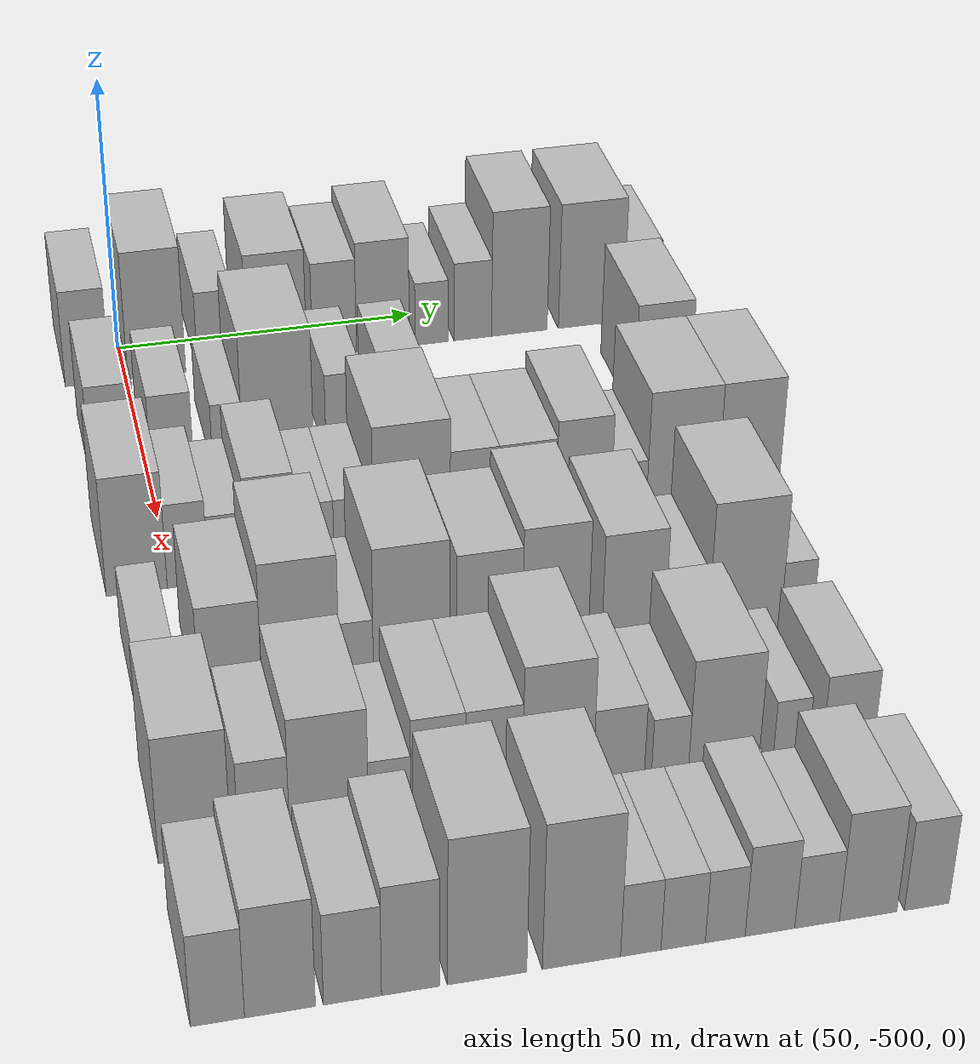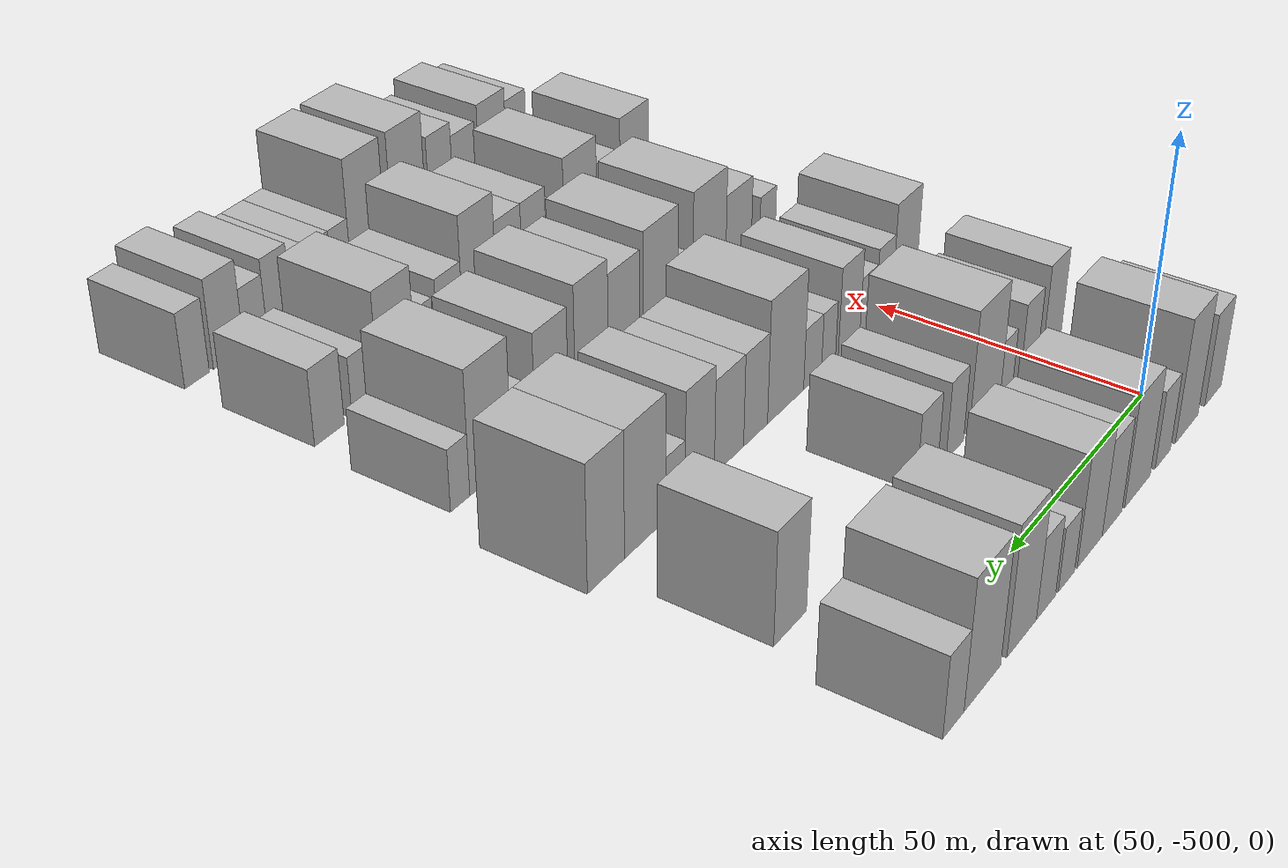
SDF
<sdf version="1.6">
 <world name="default">
  <model name="building_1">
   <static>1</static>
   <pose>50.0000 -506.3268 0 0.000000 0.000000 0.000000</pose>
   <link name="link">
    <pose>0 0 9.00 0 0 0</pose>
    <collision name="collision"><geometry><box><size>20.0000 7.3464 18.0000</size></box></geometry></collision>
    <visual name="visual">
     <cast_shadows>0</cast_shadows>
     <geometry><box><size>20.0000 7.3464 18.0000</size></box></geometry>
     <material>
      <script>
       <uri>model://HANNAS_wall/materials/scripts</uri>
       <uri>model://HANNAS_wall/materials/textures</uri>
       <name>vrc/HANNAS_wall</name>
      </script>
     </material>
    </visual>
   </link>
  </model>
  <model name="building_2">
   <static>1</static>
   <pose>50.0000 -494.8305 0 0.000000 0.000000 0.000000</pose>
   <link name="link">
    <pose>0 0 12.00 0 0 0</pose>
    <collision name="collision"><geometry><box><size>20.0000 9.6461 24.0000</size></box></geometry></collision>
    <visual name="visual">
     <cast_shadows>0</cast_shadows>
     <geometry><box><size>20.0000 9.6461 24.0000</size></box></geometry>
     <material>
      <script>
       <uri>model://HANNAS_wall/materials/scripts</uri>
       <uri>model://HANNAS_wall/materials/textures</uri>
       <name>vrc/HANNAS_wall</name>
      </script>
     </material>
    </visual>
   </link>
  </model>
  <model name="building_3">
   <static>1</static>
   <pose>50.0000 -484.8706 0 0.000000 0.000000 0.000000</pose>
   <link name="link">
    <pose>0 0 7.50 0 0 0</pose>
    <collision name="collision"><geometry><box><size>20.0000 6.2738 15.0000</size></box></geometry></collision>
    <visual name="visual">
     <cast_shadows>0</cast_shadows>
     <geometry><box><size>20.0000 6.2738 15.0000</size></box></geometry>
     <material>
      <script>
       <uri>model://HANNAS_wall/materials/scripts</uri>
       <uri>model://HANNAS_wall/materials/textures</uri>
       <name>vrc/HANNAS_wall</name>
      </script>
     </material>
    </visual>
   </link>
  </model>
  <model name="building_4">
   <static>1</static>
   <pose>50.0000 -474.6701 0 0.000000 0.000000 0.000000</pose>
   <link name="link">
    <pose>0 0 10.50 0 0 0</pose>
    <collision name="collision"><geometry><box><size>20.0000 10.1271 21.0000</size></box></geometry></collision>
    <visual name="visual">
     <cast_shadows>0</cast_shadows>
     <geometry><box><size>20.0000 10.1271 21.0000</size></box></geometry>
     <material>
      <script>
       <uri>model://HANNAS_wall/materials/scripts</uri>
       <uri>model://HANNAS_wall/materials/textures</uri>
       <name>vrc/HANNAS_wall</name>
      </script>
     </material>
    </visual>
   </link>
  </model>
  <model name="building_5">
   <static>1</static>
   <pose>50.0000 -464.8590 0 0.000000 0.000000 0.000000</pose>
   <link name="link">
    <pose>0 0 9.00 0 0 0</pose>
    <collision name="collision"><geometry><box><size>20.0000 7.4952 18.0000</size></box></geometry></collision>
    <visual name="visual">
     <cast_shadows>0</cast_shadows>
     <geometry><box><size>20.0000 7.4952 18.0000</size></box></geometry>
     <material>
      <script>
       <uri>model://HANNAS_wall/materials/scripts</uri>
       <uri>model://HANNAS_wall/materials/textures</uri>
       <name>vrc/HANNAS_wall</name>
      </script>
     </material>
    </visual>
   </link>
  </model>
  <model name="building_6">
   <static>1</static>
   <pose>50.0000 -456.5824 0 0.000000 0.000000 0.000000</pose>
   <link name="link">
    <pose>0 0 10.50 0 0 0</pose>
    <collision name="collision"><geometry><box><size>20.0000 9.0579 21.0000</size></box></geometry></collision>
    <visual name="visual">
     <cast_shadows>0</cast_shadows>
     <geometry><box><size>20.0000 9.0579 21.0000</size></box></geometry>
     <material>
      <script>
       <uri>model://HANNAS_wall/materials/scripts</uri>
       <uri>model://HANNAS_wall/materials/textures</uri>
       <name>vrc/HANNAS_wall</name>
      </script>
     </material>
    </visual>
   </link>
  </model>
  <model name="building_7">
   <static>1</static>
   <pose>50.0000 -448.1775 0 0.000000 0.000000 0.000000</pose>
   <link name="link">
    <pose>0 0 6.00 0 0 0</pose>
    <collision name="collision"><geometry><box><size>20.0000 5.7519 12.0000</size></box></geometry></collision>
    <visual name="visual">
     <cast_shadows>0</cast_shadows>
     <geometry><box><size>20.0000 5.7519 12.0000</size></box></geometry>
     <material>
      <script>
       <uri>model://HANNAS_wall/materials/scripts</uri>
       <uri>model://HANNAS_wall/materials/textures</uri>
       <name>vrc/HANNAS_wall</name>
      </script>
     </material>
    </visual>
   </link>
  </model>
  <model name="building_8">
   <static>1</static>
   <pose>50.0000 -441.0322 0 0.000000 0.000000 0.000000</pose>
   <link name="link">
    <pose>0 0 7.50 0 0 0</pose>
    <collision name="collision"><geometry><box><size>20.0000 6.5389 15.0000</size></box></geometry></collision>
    <visual name="visual">
     <cast_shadows>0</cast_shadows>
     <geometry><box><size>20.0000 6.5389 15.0000</size></box></geometry>
     <material>
      <script>
       <uri>model://HANNAS_wall/materials/scripts</uri>
       <uri>model://HANNAS_wall/materials/textures</uri>
       <name>vrc/HANNAS_wall</name>
      </script>
     </material>
    </visual>
   </link>
  </model>
  <model name="building_9">
   <static>1</static>
   <pose>50.0000 -432.8886 0 0.000000 0.000000 0.000000</pose>
   <link name="link">
    <pose>0 0 12.00 0 0 0</pose>
    <collision name="collision"><geometry><box><size>20.0000 9.7483 24.0000</size></box></geometry></collision>
    <visual name="visual">
     <cast_shadows>0</cast_shadows>
     <geometry><box><size>20.0000 9.7483 24.0000</size></box></geometry>
     <material>
      <script>
       <uri>model://HANNAS_wall/materials/scripts</uri>
       <uri>model://HANNAS_wall/materials/textures</uri>
       <name>vrc/HANNAS_wall</name>
      </script>
     </material>
    </visual>
   </link>
  </model>
  <model name="building_10">
   <static>1</static>
   <pose>50.0000 -420.2795 0 0.000000 0.000000 0.000000</pose>
   <link name="link">
    <pose>0 0 12.00 0 0 0</pose>
    <collision name="collision"><geometry><box><size>20.0000 11.4699 24.0000</size></box></geometry></collision>
    <visual name="visual">
     <cast_shadows>0</cast_shadows>
     <geometry><box><size>20.0000 11.4699 24.0000</size></box></geometry>
     <material>
      <script>
       <uri>model://HANNAS_wall/materials/scripts</uri>
       <uri>model://HANNAS_wall/materials/textures</uri>
       <name>vrc/HANNAS_wall</name>
      </script>
     </material>
    </visual>
   </link>
  </model>
  <model name="building_11">
   <static>1</static>
   <pose>50.0000 -411.3486 0 0.000000 0.000000 0.000000</pose>
   <link name="link">
    <pose>0 0 7.50 0 0 0</pose>
    <collision name="collision"><geometry><box><size>20.0000 6.3918 15.0000</size></box></geometry></collision>
    <visual name="visual">
     <cast_shadows>0</cast_shadows>
     <geometry><box><size>20.0000 6.3918 15.0000</size></box></geometry>
     <material>
      <script>
       <uri>model://HANNAS_wall/materials/scripts</uri>
       <uri>model://HANNAS_wall/materials/textures</uri>
       <name>vrc/HANNAS_wall</name>
      </script>
     </material>
    </visual>
   </link>
  </model>
  <model name="building_111">
   <static>1</static>
   <pose>79.0000 -505.2695 0 0.000000 0.000000 0.000000</pose>
   <link name="link">
    <pose>0 0 9.00 0 0 0</pose>
    <collision name="collision"><geometry><box><size>20.0000 7.4611 18.0000</size></box></geometry></collision>
    <visual name="visual">
     <cast_shadows>0</cast_shadows>
     <geometry><box><size>20.0000 7.4611 18.0000</size></box></geometry>
     <material>
      <script>
       <uri>model://HANNAS_wall/materials/scripts</uri>
       <uri>model://HANNAS_wall/materials/textures</uri>
       <name>vrc/HANNAS_wall</name>
      </script>
     </material>
    </visual>
   </link>
  </model>
  <model name="building_112">
   <static>1</static>
   <pose>79.0000 -496.1673 0 0.000000 0.000000 0.000000</pose>
   <link name="link">
    <pose>0 0 7.50 0 0 0</pose>
    <collision name="collision"><geometry><box><size>20.0000 6.7433 15.0000</size></box></geometry></collision>
    <visual name="visual">
     <cast_shadows>0</cast_shadows>
     <geometry><box><size>20.0000 6.7433 15.0000</size></box></geometry>
     <material>
      <script>
       <uri>model://HANNAS_wall/materials/scripts</uri>
       <uri>model://HANNAS_wall/materials/textures</uri>
       <name>vrc/HANNAS_wall</name>
      </script>
     </material>
    </visual>
   </link>
  </model>
  <model name="building_113">
   <static>1</static>
   <pose>79.0000 -487.3904 0 0.000000 0.000000 0.000000</pose>
   <link name="link">
    <pose>0 0 6.00 0 0 0</pose>
    <collision name="collision"><geometry><box><size>20.0000 4.8106 12.0000</size></box></geometry></collision>
    <visual name="visual">
     <cast_shadows>0</cast_shadows>
     <geometry><box><size>20.0000 4.8106 12.0000</size></box></geometry>
     <material>
      <script>
       <uri>model://HANNAS_wall/materials/scripts</uri>
       <uri>model://HANNAS_wall/materials/textures</uri>
       <name>vrc/HANNAS_wall</name>
      </script>
     </material>
    </visual>
   </link>
  </model>
  <model name="building_114">
   <static>1</static>
   <pose>79.0000 -479.3361 0 0.000000 0.000000 0.000000</pose>
   <link name="link">
    <pose>0 0 12.00 0 0 0</pose>
    <collision name="collision"><geometry><box><size>20.0000 11.2979 24.0000</size></box></geometry></collision>
    <visual name="visual">
     <cast_shadows>0</cast_shadows>
     <geometry><box><size>20.0000 11.2979 24.0000</size></box></geometry>
     <material>
      <script>
       <uri>model://HANNAS_wall/materials/scripts</uri>
       <uri>model://HANNAS_wall/materials/textures</uri>
       <name>vrc/HANNAS_wall</name>
      </script>
     </material>
    </visual>
   </link>
  </model>
  <model name="building_115">
   <static>1</static>
   <pose>79.0000 -468.6119 0 0.000000 0.000000 0.000000</pose>
   <link name="link">
    <pose>0 0 7.50 0 0 0</pose>
    <collision name="collision"><geometry><box><size>20.0000 6.1506 15.0000</size></box></geometry></collision>
    <visual name="visual">
     <cast_shadows>0</cast_shadows>
     <geometry><box><size>20.0000 6.1506 15.0000</size></box></geometry>
     <material>
      <script>
       <uri>model://HANNAS_wall/materials/scripts</uri>
       <uri>model://HANNAS_wall/materials/textures</uri>
       <name>vrc/HANNAS_wall</name>
      </script>
     </material>
    </visual>
   </link>
  </model>
  <model name="building_116">
   <static>1</static>
   <pose>79.0000 -458.9659 0 0.000000 0.000000 0.000000</pose>
   <link name="link">
    <pose>0 0 7.50 0 0 0</pose>
    <collision name="collision"><geometry><box><size>20.0000 7.1414 15.0000</size></box></geometry></collision>
    <visual name="visual">
     <cast_shadows>0</cast_shadows>
     <geometry><box><size>20.0000 7.1414 15.0000</size></box></geometry>
     <material>
      <script>
       <uri>model://HANNAS_wall/materials/scripts</uri>
       <uri>model://HANNAS_wall/materials/textures</uri>
       <name>vrc/HANNAS_wall</name>
      </script>
     </material>
    </visual>
   </link>
  </model>
  <model name="building_117">
   <static>1</static>
   <pose>79.0000 -416.3410 0 0.000000 0.000000 0.000000</pose>
   <link name="link">
    <pose>0 0 10.50 0 0 0</pose>
    <collision name="collision"><geometry><box><size>20.0000 9.3695 21.0000</size></box></geometry></collision>
    <visual name="visual">
     <cast_shadows>0</cast_shadows>
     <geometry><box><size>20.0000 9.3695 21.0000</size></box></geometry>
     <material>
      <script>
       <uri>model://HANNAS_wall/materials/scripts</uri>
       <uri>model://HANNAS_wall/materials/textures</uri>
       <name>vrc/HANNAS_wall</name>
      </script>
     </material>
    </visual>
   </link>
  </model>
  <model name="building_222">
   <static>1</static>
   <pose>108.0000 -505.4790 0 0.000000 0.000000 0.000000</pose>
   <link name="link">
    <pose>0 0 10.50 0 0 0</pose>
    <collision name="collision"><geometry><box><size>20.0000 9.0421 21.0000</size></box></geometry></collision>
    <visual name="visual">
     <cast_shadows>0</cast_shadows>
     <geometry><box><size>20.0000 9.0421 21.0000</size></box></geometry>
     <material>
      <script>
       <uri>model://HANNAS_wall/materials/scripts</uri>
       <uri>model://HANNAS_wall/materials/textures</uri>
       <name>vrc/HANNAS_wall</name>
      </script>
     </material>
    </visual>
   </link>
  </model>
  <model name="building_223">
   <static>1</static>
   <pose>108.0000 -497.9045 0 0.000000 0.000000 0.000000</pose>
   <link name="link">
    <pose>0 0 7.50 0 0 0</pose>
    <collision name="collision"><geometry><box><size>20.0000 6.1069 15.0000</size></box></geometry></collision>
    <visual name="visual">
     <cast_shadows>0</cast_shadows>
     <geometry><box><size>20.0000 6.1069 15.0000</size></box></geometry>
     <material>
      <script>
       <uri>model://HANNAS_wall/materials/scripts</uri>
       <uri>model://HANNAS_wall/materials/textures</uri>
       <name>vrc/HANNAS_wall</name>
      </script>
     </material>
    </visual>
   </link>
  </model>
  <model name="building_224">
   <static>1</static>
   <pose>108.0000 -492.0400 0 0.000000 0.000000 0.000000</pose>
   <link name="link">
    <pose>0 0 6.00 0 0 0</pose>
    <collision name="collision"><geometry><box><size>20.0000 5.6221 12.0000</size></box></geometry></collision>
    <visual name="visual">
     <cast_shadows>0</cast_shadows>
     <geometry><box><size>20.0000 5.6221 12.0000</size></box></geometry>
     <material>
      <script>
       <uri>model://HANNAS_wall/materials/scripts</uri>
       <uri>model://HANNAS_wall/materials/textures</uri>
       <name>vrc/HANNAS_wall</name>
      </script>
     </material>
    </visual>
   </link>
  </model>
  <model name="building_225">
   <static>1</static>
   <pose>108.0000 -485.4439 0 0.000000 0.000000 0.000000</pose>
   <link name="link">
    <pose>0 0 9.00 0 0 0</pose>
    <collision name="collision"><geometry><box><size>20.0000 7.5700 18.0000</size></box></geometry></collision>
    <visual name="visual">
     <cast_shadows>0</cast_shadows>
     <geometry><box><size>20.0000 7.5700 18.0000</size></box></geometry>
     <material>
      <script>
       <uri>model://HANNAS_wall/materials/scripts</uri>
       <uri>model://HANNAS_wall/materials/textures</uri>
       <name>vrc/HANNAS_wall</name>
      </script>
     </material>
    </visual>
   </link>
  </model>
  <model name="building_226">
   <static>1</static>
   <pose>108.0000 -478.2546 0 0.000000 0.000000 0.000000</pose>
   <link name="link">
    <pose>0 0 6.00 0 0 0</pose>
    <collision name="collision"><geometry><box><size>20.0000 4.8088 12.0000</size></box></geometry></collision>
    <visual name="visual">
     <cast_shadows>0</cast_shadows>
     <geometry><box><size>20.0000 4.8088 12.0000</size></box></geometry>
     <material>
      <script>
       <uri>model://HANNAS_wall/materials/scripts</uri>
       <uri>model://HANNAS_wall/materials/textures</uri>
       <name>vrc/HANNAS_wall</name>
      </script>
     </material>
    </visual>
   </link>
  </model>
  <model name="building_227">
   <static>1</static>
   <pose>108.0000 -472.8667 0 0.000000 0.000000 0.000000</pose>
   <link name="link">
    <pose>0 0 6.00 0 0 0</pose>
    <collision name="collision"><geometry><box><size>20.0000 5.9670 12.0000</size></box></geometry></collision>
    <visual name="visual">
     <cast_shadows>0</cast_shadows>
     <geometry><box><size>20.0000 5.9670 12.0000</size></box></geometry>
     <material>
      <script>
       <uri>model://HANNAS_wall/materials/scripts</uri>
       <uri>model://HANNAS_wall/materials/textures</uri>
       <name>vrc/HANNAS_wall</name>
      </script>
     </material>
    </visual>
   </link>
  </model>
  <model name="building_228">
   <static>1</static>
   <pose>108.0000 -464.0064 0 0.000000 0.000000 0.000000</pose>
   <link name="link">
    <pose>0 0 12.00 0 0 0</pose>
    <collision name="collision"><geometry><box><size>20.0000 11.7536 24.0000</size></box></geometry></collision>
    <visual name="visual">
     <cast_shadows>0</cast_shadows>
     <geometry><box><size>20.0000 11.7536 24.0000</size></box></geometry>
     <material>
      <script>
       <uri>model://HANNAS_wall/materials/scripts</uri>
       <uri>model://HANNAS_wall/materials/textures</uri>
       <name>vrc/HANNAS_wall</name>
      </script>
     </material>
    </visual>
   </link>
  </model>
  <model name="building_229">
   <static>1</static>
   <pose>108.0000 -454.3850 0 0.000000 0.000000 0.000000</pose>
   <link name="link">
    <pose>0 0 9.00 0 0 0</pose>
    <collision name="collision"><geometry><box><size>20.0000 7.4891 18.0000</size></box></geometry></collision>
    <visual name="visual">
     <cast_shadows>0</cast_shadows>
     <geometry><box><size>20.0000 7.4891 18.0000</size></box></geometry>
     <material>
      <script>
       <uri>model://HANNAS_wall/materials/scripts</uri>
       <uri>model://HANNAS_wall/materials/textures</uri>
       <name>vrc/HANNAS_wall</name>
      </script>
     </material>
    </visual>
   </link>
  </model>
  <model name="building_230">
   <static>1</static>
   <pose>108.0000 -446.1897 0 0.000000 0.000000 0.000000</pose>
   <link name="link">
    <pose>0 0 9.00 0 0 0</pose>
    <collision name="collision"><geometry><box><size>20.0000 8.9014 18.0000</size></box></geometry></collision>
    <visual name="visual">
     <cast_shadows>0</cast_shadows>
     <geometry><box><size>20.0000 8.9014 18.0000</size></box></geometry>
     <material>
      <script>
       <uri>model://HANNAS_wall/materials/scripts</uri>
       <uri>model://HANNAS_wall/materials/textures</uri>
       <name>vrc/HANNAS_wall</name>
      </script>
     </material>
    </visual>
   </link>
  </model>
  <model name="building_231">
   <static>1</static>
   <pose>108.0000 -437.4382 0 0.000000 0.000000 0.000000</pose>
   <link name="link">
    <pose>0 0 10.50 0 0 0</pose>
    <collision name="collision"><geometry><box><size>20.0000 8.6015 21.0000</size></box></geometry></collision>
    <visual name="visual">
     <cast_shadows>0</cast_shadows>
     <geometry><box><size>20.0000 8.6015 21.0000</size></box></geometry>
     <material>
      <script>
       <uri>model://HANNAS_wall/materials/scripts</uri>
       <uri>model://HANNAS_wall/materials/textures</uri>
       <name>vrc/HANNAS_wall</name>
      </script>
     </material>
    </visual>
   </link>
  </model>
  <model name="building_232">
   <static>1</static>
   <pose>108.0000 -430.3491 0 0.000000 0.000000 0.000000</pose>
   <link name="link">
    <pose>0 0 6.00 0 0 0</pose>
    <collision name="collision"><geometry><box><size>20.0000 5.5768 12.0000</size></box></geometry></collision>
    <visual name="visual">
     <cast_shadows>0</cast_shadows>
     <geometry><box><size>20.0000 5.5768 12.0000</size></box></geometry>
     <material>
      <script>
       <uri>model://HANNAS_wall/materials/scripts</uri>
       <uri>model://HANNAS_wall/materials/textures</uri>
       <name>vrc/HANNAS_wall</name>
      </script>
     </material>
    </visual>
   </link>
  </model>
  <model name="building_233">
   <static>1</static>
   <pose>108.0000 -421.9205 0 0.000000 0.000000 0.000000</pose>
   <link name="link">
    <pose>0 0 12.00 0 0 0</pose>
    <collision name="collision"><geometry><box><size>20.0000 11.2803 24.0000</size></box></geometry></collision>
    <visual name="visual">
     <cast_shadows>0</cast_shadows>
     <geometry><box><size>20.0000 11.2803 24.0000</size></box></geometry>
     <material>
      <script>
       <uri>model://HANNAS_wall/materials/scripts</uri>
       <uri>model://HANNAS_wall/materials/textures</uri>
       <name>vrc/HANNAS_wall</name>
      </script>
     </material>
    </visual>
   </link>
  </model>
  <model name="building_234">
   <static>1</static>
   <pose>108.0000 -411.3697 0 0.000000 0.000000 0.000000</pose>
   <link name="link">
    <pose>0 0 12.00 0 0 0</pose>
    <collision name="collision"><geometry><box><size>20.0000 9.8213 24.0000</size></box></geometry></collision>
    <visual name="visual">
     <cast_shadows>0</cast_shadows>
     <geometry><box><size>20.0000 9.8213 24.0000</size></box></geometry>
     <material>
      <script>
       <uri>model://HANNAS_wall/materials/scripts</uri>
       <uri>model://HANNAS_wall/materials/textures</uri>
       <name>vrc/HANNAS_wall</name>
      </script>
     </material>
    </visual>
   </link>
  </model>
  <model name="building_336">
   <static>1</static>
   <pose>137.0000 -506.1882 0 0.000000 0.000000 0.000000</pose>
   <link name="link">
    <pose>0 0 6.00 0 0 0</pose>
    <collision name="collision"><geometry><box><size>20.0000 5.6235 12.0000</size></box></geometry></collision>
    <visual name="visual">
     <cast_shadows>0</cast_shadows>
     <geometry><box><size>20.0000 5.6235 12.0000</size></box></geometry>
     <material>
      <script>
       <uri>model://HANNAS_wall/materials/scripts</uri>
       <uri>model://HANNAS_wall/materials/textures</uri>
       <name>vrc/HANNAS_wall</name>
      </script>
     </material>
    </visual>
   </link>
  </model>
  <model name="building_337">
   <static>1</static>
   <pose>137.0000 -495.9571 0 0.000000 0.000000 0.000000</pose>
   <link name="link">
    <pose>0 0 9.00 0 0 0</pose>
    <collision name="collision"><geometry><box><size>20.0000 8.8387 18.0000</size></box></geometry></collision>
    <visual name="visual">
     <cast_shadows>0</cast_shadows>
     <geometry><box><size>20.0000 8.8387 18.0000</size></box></geometry>
     <material>
      <script>
       <uri>model://HANNAS_wall/materials/scripts</uri>
       <uri>model://HANNAS_wall/materials/textures</uri>
       <name>vrc/HANNAS_wall</name>
      </script>
     </material>
    </visual>
   </link>
  </model>
  <model name="building_338">
   <static>1</static>
   <pose>137.0000 -486.0513 0 0.000000 0.000000 0.000000</pose>
   <link name="link">
    <pose>0 0 12.00 0 0 0</pose>
    <collision name="collision"><geometry><box><size>20.0000 10.9730 24.0000</size></box></geometry></collision>
    <visual name="visual">
     <cast_shadows>0</cast_shadows>
     <geometry><box><size>20.0000 10.9730 24.0000</size></box></geometry>
     <material>
      <script>
       <uri>model://HANNAS_wall/materials/scripts</uri>
       <uri>model://HANNAS_wall/materials/textures</uri>
       <name>vrc/HANNAS_wall</name>
      </script>
     </material>
    </visual>
   </link>
  </model>
  <model name="building_339">
   <static>1</static>
   <pose>137.0000 -478.1371 0 0.000000 0.000000 0.000000</pose>
   <link name="link">
    <pose>0 0 6.00 0 0 0</pose>
    <collision name="collision"><geometry><box><size>20.0000 4.8553 12.0000</size></box></geometry></collision>
    <visual name="visual">
     <cast_shadows>0</cast_shadows>
     <geometry><box><size>20.0000 4.8553 12.0000</size></box></geometry>
     <material>
      <script>
       <uri>model://HANNAS_wall/materials/scripts</uri>
       <uri>model://HANNAS_wall/materials/textures</uri>
       <name>vrc/HANNAS_wall</name>
      </script>
     </material>
    </visual>
   </link>
  </model>
  <model name="building_340">
   <static>1</static>
   <pose>137.0000 -470.2455 0 0.000000 0.000000 0.000000</pose>
   <link name="link">
    <pose>0 0 12.00 0 0 0</pose>
    <collision name="collision"><geometry><box><size>20.0000 10.9280 24.0000</size></box></geometry></collision>
    <visual name="visual">
     <cast_shadows>0</cast_shadows>
     <geometry><box><size>20.0000 10.9280 24.0000</size></box></geometry>
     <material>
      <script>
       <uri>model://HANNAS_wall/materials/scripts</uri>
       <uri>model://HANNAS_wall/materials/textures</uri>
       <name>vrc/HANNAS_wall</name>
      </script>
     </material>
    </visual>
   </link>
  </model>
  <model name="building_341">
   <static>1</static>
   <pose>137.0000 -459.0451 0 0.000000 0.000000 0.000000</pose>
   <link name="link">
    <pose>0 0 10.50 0 0 0</pose>
    <collision name="collision"><geometry><box><size>20.0000 9.4728 21.0000</size></box></geometry></collision>
    <visual name="visual">
     <cast_shadows>0</cast_shadows>
     <geometry><box><size>20.0000 9.4728 21.0000</size></box></geometry>
     <material>
      <script>
       <uri>model://HANNAS_wall/materials/scripts</uri>
       <uri>model://HANNAS_wall/materials/textures</uri>
       <name>vrc/HANNAS_wall</name>
      </script>
     </material>
    </visual>
   </link>
  </model>
  <model name="building_342">
   <static>1</static>
   <pose>137.0000 -449.4558 0 0.000000 0.000000 0.000000</pose>
   <link name="link">
    <pose>0 0 12.00 0 0 0</pose>
    <collision name="collision"><geometry><box><size>20.0000 9.7059 24.0000</size></box></geometry></collision>
    <visual name="visual">
     <cast_shadows>0</cast_shadows>
     <geometry><box><size>20.0000 9.7059 24.0000</size></box></geometry>
     <material>
      <script>
       <uri>model://HANNAS_wall/materials/scripts</uri>
       <uri>model://HANNAS_wall/materials/textures</uri>
       <name>vrc/HANNAS_wall</name>
      </script>
     </material>
    </visual>
   </link>
  </model>
  <model name="building_343">
   <static>1</static>
   <pose>137.0000 -437.9423 0 0.000000 0.000000 0.000000</pose>
   <link name="link">
    <pose>0 0 10.50 0 0 0</pose>
    <collision name="collision"><geometry><box><size>20.0000 9.3212 21.0000</size></box></geometry></collision>
    <visual name="visual">
     <cast_shadows>0</cast_shadows>
     <geometry><box><size>20.0000 9.3212 21.0000</size></box></geometry>
     <material>
      <script>
       <uri>model://HANNAS_wall/materials/scripts</uri>
       <uri>model://HANNAS_wall/materials/textures</uri>
       <name>vrc/HANNAS_wall</name>
      </script>
     </material>
    </visual>
   </link>
  </model>
  <model name="building_344">
   <static>1</static>
   <pose>137.0000 -429.5221 0 0.000000 0.000000 0.000000</pose>
   <link name="link">
    <pose>0 0 6.00 0 0 0</pose>
    <collision name="collision"><geometry><box><size>20.0000 5.5191 12.0000</size></box></geometry></collision>
    <visual name="visual">
     <cast_shadows>0</cast_shadows>
     <geometry><box><size>20.0000 5.5191 12.0000</size></box></geometry>
     <material>
      <script>
       <uri>model://HANNAS_wall/materials/scripts</uri>
       <uri>model://HANNAS_wall/materials/textures</uri>
       <name>vrc/HANNAS_wall</name>
      </script>
     </material>
    </visual>
   </link>
  </model>
  <model name="building_345">
   <static>1</static>
   <pose>137.0000 -421.2619 0 0.000000 0.000000 0.000000</pose>
   <link name="link">
    <pose>0 0 12.00 0 0 0</pose>
    <collision name="collision"><geometry><box><size>20.0000 11.0013 24.0000</size></box></geometry></collision>
    <visual name="visual">
     <cast_shadows>0</cast_shadows>
     <geometry><box><size>20.0000 11.0013 24.0000</size></box></geometry>
     <material>
      <script>
       <uri>model://HANNAS_wall/materials/scripts</uri>
       <uri>model://HANNAS_wall/materials/textures</uri>
       <name>vrc/HANNAS_wall</name>
      </script>
     </material>
    </visual>
   </link>
  </model>
  <model name="building_346">
   <static>1</static>
   <pose>137.0000 -413.2908 0 0.000000 0.000000 0.000000</pose>
   <link name="link">
    <pose>0 0 6.00 0 0 0</pose>
    <collision name="collision"><geometry><box><size>20.0000 4.9409 12.0000</size></box></geometry></collision>
    <visual name="visual">
     <cast_shadows>0</cast_shadows>
     <geometry><box><size>20.0000 4.9409 12.0000</size></box></geometry>
     <material>
      <script>
       <uri>model://HANNAS_wall/materials/scripts</uri>
       <uri>model://HANNAS_wall/materials/textures</uri>
       <name>vrc/HANNAS_wall</name>
      </script>
     </material>
    </visual>
   </link>
  </model>
  <model name="building_447">
   <static>1</static>
   <pose>166.0000 -505.2301 0 0.000000 0.000000 0.000000</pose>
   <link name="link">
    <pose>0 0 10.50 0 0 0</pose>
    <collision name="collision"><geometry><box><size>20.0000 9.5397 21.0000</size></box></geometry></collision>
    <visual name="visual">
     <cast_shadows>0</cast_shadows>
     <geometry><box><size>20.0000 9.5397 21.0000</size></box></geometry>
     <material>
      <script>
       <uri>model://HANNAS_wall/materials/scripts</uri>
       <uri>model://HANNAS_wall/materials/textures</uri>
       <name>vrc/HANNAS_wall</name>
      </script>
     </material>
    </visual>
   </link>
  </model>
  <model name="building_448">
   <static>1</static>
   <pose>166.0000 -496.0874 0 0.000000 0.000000 0.000000</pose>
   <link name="link">
    <pose>0 0 7.50 0 0 0</pose>
    <collision name="collision"><geometry><box><size>20.0000 6.7457 15.0000</size></box></geometry></collision>
    <visual name="visual">
     <cast_shadows>0</cast_shadows>
     <geometry><box><size>20.0000 6.7457 15.0000</size></box></geometry>
     <material>
      <script>
       <uri>model://HANNAS_wall/materials/scripts</uri>
       <uri>model://HANNAS_wall/materials/textures</uri>
       <name>vrc/HANNAS_wall</name>
      </script>
     </material>
    </visual>
   </link>
  </model>
  <model name="building_449">
   <static>1</static>
   <pose>166.0000 -487.4732 0 0.000000 0.000000 0.000000</pose>
   <link name="link">
    <pose>0 0 10.50 0 0 0</pose>
    <collision name="collision"><geometry><box><size>20.0000 10.4827 21.0000</size></box></geometry></collision>
    <visual name="visual">
     <cast_shadows>0</cast_shadows>
     <geometry><box><size>20.0000 10.4827 21.0000</size></box></geometry>
     <material>
      <script>
       <uri>model://HANNAS_wall/materials/scripts</uri>
       <uri>model://HANNAS_wall/materials/textures</uri>
       <name>vrc/HANNAS_wall</name>
      </script>
     </material>
    </visual>
   </link>
  </model>
  <model name="building_450">
   <static>1</static>
   <pose>166.0000 -479.4008 0 0.000000 0.000000 0.000000</pose>
   <link name="link">
    <pose>0 0 6.00 0 0 0</pose>
    <collision name="collision"><geometry><box><size>20.0000 5.6622 12.0000</size></box></geometry></collision>
    <visual name="visual">
     <cast_shadows>0</cast_shadows>
     <geometry><box><size>20.0000 5.6622 12.0000</size></box></geometry>
     <material>
      <script>
       <uri>model://HANNAS_wall/materials/scripts</uri>
       <uri>model://HANNAS_wall/materials/textures</uri>
       <name>vrc/HANNAS_wall</name>
      </script>
     </material>
    </visual>
   </link>
  </model>
  <model name="building_451">
   <static>1</static>
   <pose>166.0000 -472.9154 0 0.000000 0.000000 0.000000</pose>
   <link name="link">
    <pose>0 0 9.00 0 0 0</pose>
    <collision name="collision"><geometry><box><size>20.0000 7.3086 18.0000</size></box></geometry></collision>
    <visual name="visual">
     <cast_shadows>0</cast_shadows>
     <geometry><box><size>20.0000 7.3086 18.0000</size></box></geometry>
     <material>
      <script>
       <uri>model://HANNAS_wall/materials/scripts</uri>
       <uri>model://HANNAS_wall/materials/textures</uri>
       <name>vrc/HANNAS_wall</name>
      </script>
     </material>
    </visual>
   </link>
  </model>
  <model name="building_452">
   <static>1</static>
   <pose>166.0000 -465.4050 0 0.000000 0.000000 0.000000</pose>
   <link name="link">
    <pose>0 0 9.00 0 0 0</pose>
    <collision name="collision"><geometry><box><size>20.0000 7.7122 18.0000</size></box></geometry></collision>
    <visual name="visual">
     <cast_shadows>0</cast_shadows>
     <geometry><box><size>20.0000 7.7122 18.0000</size></box></geometry>
     <material>
      <script>
       <uri>model://HANNAS_wall/materials/scripts</uri>
       <uri>model://HANNAS_wall/materials/textures</uri>
       <name>vrc/HANNAS_wall</name>
      </script>
     </material>
    </visual>
   </link>
  </model>
  <model name="building_453">
   <static>1</static>
   <pose>166.0000 -456.6900 0 0.000000 0.000000 0.000000</pose>
   <link name="link">
    <pose>0 0 12.00 0 0 0</pose>
    <collision name="collision"><geometry><box><size>20.0000 9.7177 24.0000</size></box></geometry></collision>
    <visual name="visual">
     <cast_shadows>0</cast_shadows>
     <geometry><box><size>20.0000 9.7177 24.0000</size></box></geometry>
     <material>
      <script>
       <uri>model://HANNAS_wall/materials/scripts</uri>
       <uri>model://HANNAS_wall/materials/textures</uri>
       <name>vrc/HANNAS_wall</name>
      </script>
     </material>
    </visual>
   </link>
  </model>
  <model name="building_454">
   <static>1</static>
   <pose>166.0000 -448.2888 0 0.000000 0.000000 0.000000</pose>
   <link name="link">
    <pose>0 0 7.50 0 0 0</pose>
    <collision name="collision"><geometry><box><size>20.0000 7.0847 15.0000</size></box></geometry></collision>
    <visual name="visual">
     <cast_shadows>0</cast_shadows>
     <geometry><box><size>20.0000 7.0847 15.0000</size></box></geometry>
     <material>
      <script>
       <uri>model://HANNAS_wall/materials/scripts</uri>
       <uri>model://HANNAS_wall/materials/textures</uri>
       <name>vrc/HANNAS_wall</name>
      </script>
     </material>
    </visual>
   </link>
  </model>
  <model name="building_455">
   <static>1</static>
   <pose>166.0000 -441.1693 0 0.000000 0.000000 0.000000</pose>
   <link name="link">
    <pose>0 0 6.00 0 0 0</pose>
    <collision name="collision"><geometry><box><size>20.0000 5.1544 12.0000</size></box></geometry></collision>
    <visual name="visual">
     <cast_shadows>0</cast_shadows>
     <geometry><box><size>20.0000 5.1544 12.0000</size></box></geometry>
     <material>
      <script>
       <uri>model://HANNAS_wall/materials/scripts</uri>
       <uri>model://HANNAS_wall/materials/textures</uri>
       <name>vrc/HANNAS_wall</name>
      </script>
     </material>
    </visual>
   </link>
  </model>
  <model name="building_456">
   <static>1</static>
   <pose>166.0000 -433.6453 0 0.000000 0.000000 0.000000</pose>
   <link name="link">
    <pose>0 0 10.50 0 0 0</pose>
    <collision name="collision"><geometry><box><size>20.0000 9.8936 21.0000</size></box></geometry></collision>
    <visual name="visual">
     <cast_shadows>0</cast_shadows>
     <geometry><box><size>20.0000 9.8936 21.0000</size></box></geometry>
     <material>
      <script>
       <uri>model://HANNAS_wall/materials/scripts</uri>
       <uri>model://HANNAS_wall/materials/textures</uri>
       <name>vrc/HANNAS_wall</name>
      </script>
     </material>
    </visual>
   </link>
  </model>
  <model name="building_457">
   <static>1</static>
   <pose>166.0000 -424.2295 0 0.000000 0.000000 0.000000</pose>
   <link name="link">
    <pose>0 0 6.00 0 0 0</pose>
    <collision name="collision"><geometry><box><size>20.0000 4.9379 12.0000</size></box></geometry></collision>
    <visual name="visual">
     <cast_shadows>0</cast_shadows>
     <geometry><box><size>20.0000 4.9379 12.0000</size></box></geometry>
     <material>
      <script>
       <uri>model://HANNAS_wall/materials/scripts</uri>
       <uri>model://HANNAS_wall/materials/textures</uri>
       <name>vrc/HANNAS_wall</name>
      </script>
     </material>
    </visual>
   </link>
  </model>
  <model name="building_458">
   <static>1</static>
   <pose>166.0000 -416.0484 0 0.000000 0.000000 0.000000</pose>
   <link name="link">
    <pose>0 0 7.50 0 0 0</pose>
    <collision name="collision"><geometry><box><size>20.0000 7.4243 15.0000</size></box></geometry></collision>
    <visual name="visual">
     <cast_shadows>0</cast_shadows>
     <geometry><box><size>20.0000 7.4243 15.0000</size></box></geometry>
     <material>
      <script>
       <uri>model://HANNAS_wall/materials/scripts</uri>
       <uri>model://HANNAS_wall/materials/textures</uri>
       <name>vrc/HANNAS_wall</name>
      </script>
     </material>
    </visual>
   </link>
  </model>
  <model name="building_558">
   <static>1</static>
   <pose>195.0000 -506.6848 0 0.000000 0.000000 0.000000</pose>
   <link name="link">
    <pose>0 0 7.50 0 0 0</pose>
    <collision name="collision"><geometry><box><size>20.0000 6.6304 15.0000</size></box></geometry></collision>
    <visual name="visual">
     <cast_shadows>0</cast_shadows>
     <geometry><box><size>20.0000 6.6304 15.0000</size></box></geometry>
     <material>
      <script>
       <uri>model://HANNAS_wall/materials/scripts</uri>
       <uri>model://HANNAS_wall/materials/textures</uri>
       <name>vrc/HANNAS_wall</name>
      </script>
     </material>
    </visual>
   </link>
  </model>
  <model name="building_559">
   <static>1</static>
   <pose>195.0000 -499.0177 0 0.000000 0.000000 0.000000</pose>
   <link name="link">
    <pose>0 0 9.00 0 0 0</pose>
    <collision name="collision"><geometry><box><size>20.0000 8.7038 18.0000</size></box></geometry></collision>
    <visual name="visual">
     <cast_shadows>0</cast_shadows>
     <geometry><box><size>20.0000 8.7038 18.0000</size></box></geometry>
     <material>
      <script>
       <uri>model://HANNAS_wall/materials/scripts</uri>
       <uri>model://HANNAS_wall/materials/textures</uri>
       <name>vrc/HANNAS_wall</name>
      </script>
     </material>
    </visual>
   </link>
  </model>
  <model name="building_560">
   <static>1</static>
   <pose>195.0000 -490.0600 0 0.000000 0.000000 0.000000</pose>
   <link name="link">
    <pose>0 0 7.50 0 0 0</pose>
    <collision name="collision"><geometry><box><size>20.0000 7.2116 15.0000</size></box></geometry></collision>
    <visual name="visual">
     <cast_shadows>0</cast_shadows>
     <geometry><box><size>20.0000 7.2116 15.0000</size></box></geometry>
     <material>
      <script>
       <uri>model://HANNAS_wall/materials/scripts</uri>
       <uri>model://HANNAS_wall/materials/textures</uri>
       <name>vrc/HANNAS_wall</name>
      </script>
     </material>
    </visual>
   </link>
  </model>
  <model name="building_561">
   <static>1</static>
   <pose>195.0000 -482.8247 0 0.000000 0.000000 0.000000</pose>
   <link name="link">
    <pose>0 0 9.00 0 0 0</pose>
    <collision name="collision"><geometry><box><size>20.0000 7.2591 18.0000</size></box></geometry></collision>
    <visual name="visual">
     <cast_shadows>0</cast_shadows>
     <geometry><box><size>20.0000 7.2591 18.0000</size></box></geometry>
     <material>
      <script>
       <uri>model://HANNAS_wall/materials/scripts</uri>
       <uri>model://HANNAS_wall/materials/textures</uri>
       <name>vrc/HANNAS_wall</name>
      </script>
     </material>
    </visual>
   </link>
  </model>
  <model name="building_562">
   <static>1</static>
   <pose>195.0000 -473.1793 0 0.000000 0.000000 0.000000</pose>
   <link name="link">
    <pose>0 0 12.00 0 0 0</pose>
    <collision name="collision"><geometry><box><size>20.0000 10.0316 24.0000</size></box></geometry></collision>
    <visual name="visual">
     <cast_shadows>0</cast_shadows>
     <geometry><box><size>20.0000 10.0316 24.0000</size></box></geometry>
     <material>
      <script>
       <uri>model://HANNAS_wall/materials/scripts</uri>
       <uri>model://HANNAS_wall/materials/textures</uri>
       <name>vrc/HANNAS_wall</name>
      </script>
     </material>
    </visual>
   </link>
  </model>
  <model name="building_563">
   <static>1</static>
   <pose>195.0000 -461.1540 0 0.000000 0.000000 0.000000</pose>
   <link name="link">
    <pose>0 0 12.00 0 0 0</pose>
    <collision name="collision"><geometry><box><size>20.0000 10.0191 24.0000</size></box></geometry></collision>
    <visual name="visual">
     <cast_shadows>0</cast_shadows>
     <geometry><box><size>20.0000 10.0191 24.0000</size></box></geometry>
     <material>
      <script>
       <uri>model://HANNAS_wall/materials/scripts</uri>
       <uri>model://HANNAS_wall/materials/textures</uri>
       <name>vrc/HANNAS_wall</name>
      </script>
     </material>
    </visual>
   </link>
  </model>
  <model name="building_564">
   <static>1</static>
   <pose>195.0000 -453.5316 0 0.000000 0.000000 0.000000</pose>
   <link name="link">
    <pose>0 0 6.00 0 0 0</pose>
    <collision name="collision"><geometry><box><size>20.0000 5.2257 12.0000</size></box></geometry></collision>
    <visual name="visual">
     <cast_shadows>0</cast_shadows>
     <geometry><box><size>20.0000 5.2257 12.0000</size></box></geometry>
     <material>
      <script>
       <uri>model://HANNAS_wall/materials/scripts</uri>
       <uri>model://HANNAS_wall/materials/textures</uri>
       <name>vrc/HANNAS_wall</name>
      </script>
     </material>
    </visual>
   </link>
  </model>
  <model name="building_565">
   <static>1</static>
   <pose>195.0000 -448.0286 0 0.000000 0.000000 0.000000</pose>
   <link name="link">
    <pose>0 0 6.00 0 0 0</pose>
    <collision name="collision"><geometry><box><size>20.0000 5.7803 12.0000</size></box></geometry></collision>
    <visual name="visual">
     <cast_shadows>0</cast_shadows>
     <geometry><box><size>20.0000 5.7803 12.0000</size></box></geometry>
     <material>
      <script>
       <uri>model://HANNAS_wall/materials/scripts</uri>
       <uri>model://HANNAS_wall/materials/textures</uri>
       <name>vrc/HANNAS_wall</name>
      </script>
     </material>
    </visual>
   </link>
  </model>
  <model name="building_566">
   <static>1</static>
   <pose>195.0000 -442.5342 0 0.000000 0.000000 0.000000</pose>
   <link name="link">
    <pose>0 0 6.00 0 0 0</pose>
    <collision name="collision"><geometry><box><size>20.0000 5.2084 12.0000</size></box></geometry></collision>
    <visual name="visual">
     <cast_shadows>0</cast_shadows>
     <geometry><box><size>20.0000 5.2084 12.0000</size></box></geometry>
     <material>
      <script>
       <uri>model://HANNAS_wall/materials/scripts</uri>
       <uri>model://HANNAS_wall/materials/textures</uri>
       <name>vrc/HANNAS_wall</name>
      </script>
     </material>
    </visual>
   </link>
  </model>
  <model name="building_567">
   <static>1</static>
   <pose>195.0000 -436.6604 0 0.000000 0.000000 0.000000</pose>
   <link name="link">
    <pose>0 0 7.50 0 0 0</pose>
    <collision name="collision"><geometry><box><size>20.0000 6.5394 15.0000</size></box></geometry></collision>
    <visual name="visual">
     <cast_shadows>0</cast_shadows>
     <geometry><box><size>20.0000 6.5394 15.0000</size></box></geometry>
     <material>
      <script>
       <uri>model://HANNAS_wall/materials/scripts</uri>
       <uri>model://HANNAS_wall/materials/textures</uri>
       <name>vrc/HANNAS_wall</name>
      </script>
     </material>
    </visual>
   </link>
  </model>
  <model name="building_568">
   <static>1</static>
   <pose>195.0000 -430.4324 0 0.000000 0.000000 0.000000</pose>
   <link name="link">
    <pose>0 0 6.00 0 0 0</pose>
    <collision name="collision"><geometry><box><size>20.0000 5.9166 12.0000</size></box></geometry></collision>
    <visual name="visual">
     <cast_shadows>0</cast_shadows>
     <geometry><box><size>20.0000 5.9166 12.0000</size></box></geometry>
     <material>
      <script>
       <uri>model://HANNAS_wall/materials/scripts</uri>
       <uri>model://HANNAS_wall/materials/textures</uri>
       <name>vrc/HANNAS_wall</name>
      </script>
     </material>
    </visual>
   </link>
  </model>
  <model name="building_569">
   <static>1</static>
   <pose>195.0000 -423.6298 0 0.000000 0.000000 0.000000</pose>
   <link name="link">
    <pose>0 0 9.00 0 0 0</pose>
    <collision name="collision"><geometry><box><size>20.0000 7.6885 18.0000</size></box></geometry></collision>
    <visual name="visual">
     <cast_shadows>0</cast_shadows>
     <geometry><box><size>20.0000 7.6885 18.0000</size></box></geometry>
     <material>
      <script>
       <uri>model://HANNAS_wall/materials/scripts</uri>
       <uri>model://HANNAS_wall/materials/textures</uri>
       <name>vrc/HANNAS_wall</name>
      </script>
     </material>
    </visual>
   </link>
  </model>
  <model name="building_570">
   <static>1</static>
   <pose>195.0000 -415.7829 0 0.000000 0.000000 0.000000</pose>
   <link name="link">
    <pose>0 0 7.50 0 0 0</pose>
    <collision name="collision"><geometry><box><size>20.0000 6.0053 15.0000</size></box></geometry></collision>
    <visual name="visual">
     <cast_shadows>0</cast_shadows>
     <geometry><box><size>20.0000 6.0053 15.0000</size></box></geometry>
     <material>
      <script>
       <uri>model://HANNAS_wall/materials/scripts</uri>
       <uri>model://HANNAS_wall/materials/textures</uri>
       <name>vrc/HANNAS_wall</name>
      </script>
     </material>
    </visual>
   </link>
  </model>
 </world>
</sdf>
